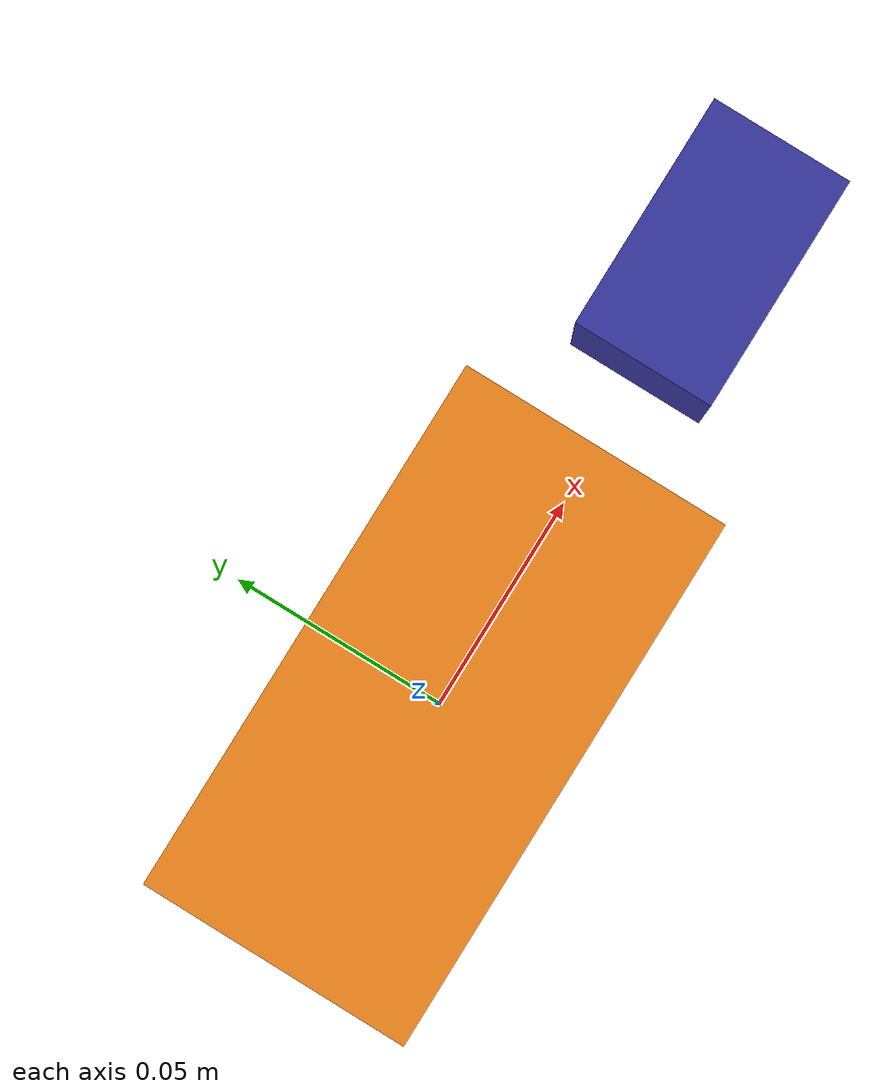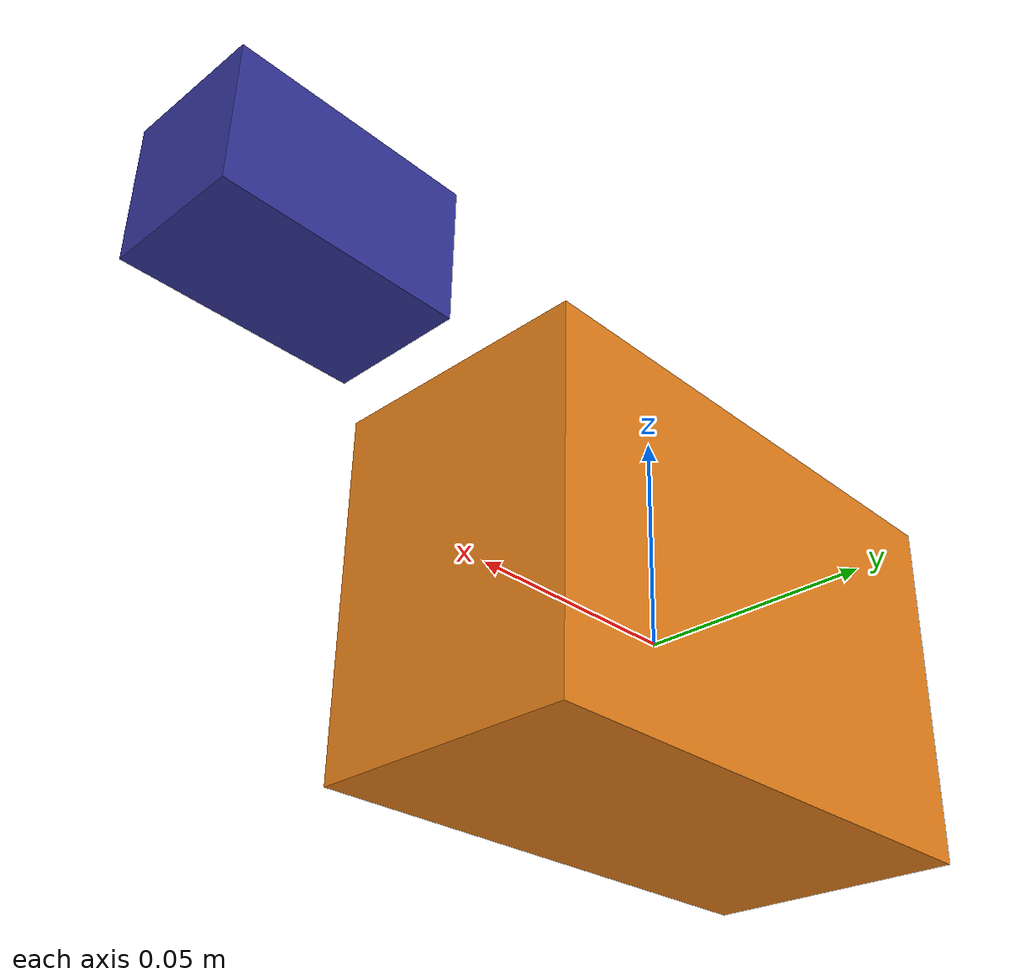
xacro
<?xml version="1.0" encoding="utf-8"?>

<robot name="rm_gimbal" xmlns:xacro="http://ros.org/wiki/xacro">

  <!-- ========== 参数配置 ========== -->
  <!-- 相机相对云台的安装位置（由 launch 通过 camera_xyz / camera_rpy 注入） -->
  <xacro:arg name="camera_xyz" default="0.10 0 0.05" />
  <xacro:arg name="camera_rpy" default="0 0 0" />

  <!-- ========== 颜色/外观定义（用于 RViz 可视化） ========== -->
  <material name="camera_material">
    <color rgba="0.2 0.2 0.6 1.0"/>  <!-- 深蓝色 -->
  </material>

  <material name="gimbal_material">
    <color rgba="0.9 0.5 0.1 1.0"/>  <!-- 橙色 -->
  </material>

  <!-- ========== 连杆定义 ========== -->

  <!-- 1. 里程计/世界坐标系 -->
  <link name="odom"/>

  <!-- 2. 云台连杆（其位姿由串口驱动动态广播 odom -> gimbal_link） -->
  <link name="gimbal_link">
    <visual>
      <geometry>
        <box size="0.12 0.06 0.08"/>
      </geometry>
      <origin xyz="0 0 0" rpy="0 0 0"/>
      <material name="gimbal_material"/>
    </visual>
    <collision>
      <geometry>
        <box size="0.12 0.06 0.08"/>
      </geometry>
    </collision>
    <inertial>
      <mass value="0.2"/>
      <inertia ixx="0.0002" ixy="0" ixz="0" iyy="0.0002" iyz="0" izz="0.0002"/>
    </inertial>
  </link>

  <!-- 3. 相机连杆 -->
  <link name="camera_link">
    <visual>
      <geometry>
        <box size="0.05 0.03 0.03"/>
      </geometry>
      <origin xyz="0 0 0" rpy="0 0 0"/>
      <material name="camera_material"/>
    </visual>
    <collision>
      <geometry>
        <box size="0.05 0.03 0.03"/>
      </geometry>
    </collision>
    <inertial>
      <mass value="0.05"/>
      <inertia ixx="0.00001" ixy="0" ixz="0" iyy="0.00001" iyz="0" izz="0.00001"/>
    </inertial>
  </link>

  <!-- 4. 相机光学坐标系（遵循 REP 103 / REP 104 标准） -->
  <link name="camera_optical_frame">
    <visual>
      <geometry>
        <box size="0.001 0.001 0.001"/>
      </geometry>
    </visual>
  </link>

  <!-- ========== 关节定义 ========== -->

  <!-- 云台浮动关节：odom -> gimbal_link（robot_state_publisher 不发布浮动关节，
       该位姿由串口驱动按电控回传的 roll/pitch/yaw 动态广播） -->
  <joint name="gimbal_joint" type="floating">
    <parent link="odom"/>
    <child link="gimbal_link"/>
  </joint>

  <!-- 相机固定连接：gimbal_link -> camera_link（安装外参在此注入） -->
  <joint name="camera_joint" type="fixed">
    <origin xyz="$(arg camera_xyz)" rpy="$(arg camera_rpy)"/>
    <parent link="gimbal_link"/>
    <child link="camera_link"/>
  </joint>

  <!-- 相机光学坐标系转换 -->
  <joint name="camera_optical_joint" type="fixed">
    <origin xyz="0 0 0" rpy="${-pi/2} 0 ${-pi/2}"/>
    <parent link="camera_link"/>
    <child link="camera_optical_frame"/>
  </joint>

</robot>
